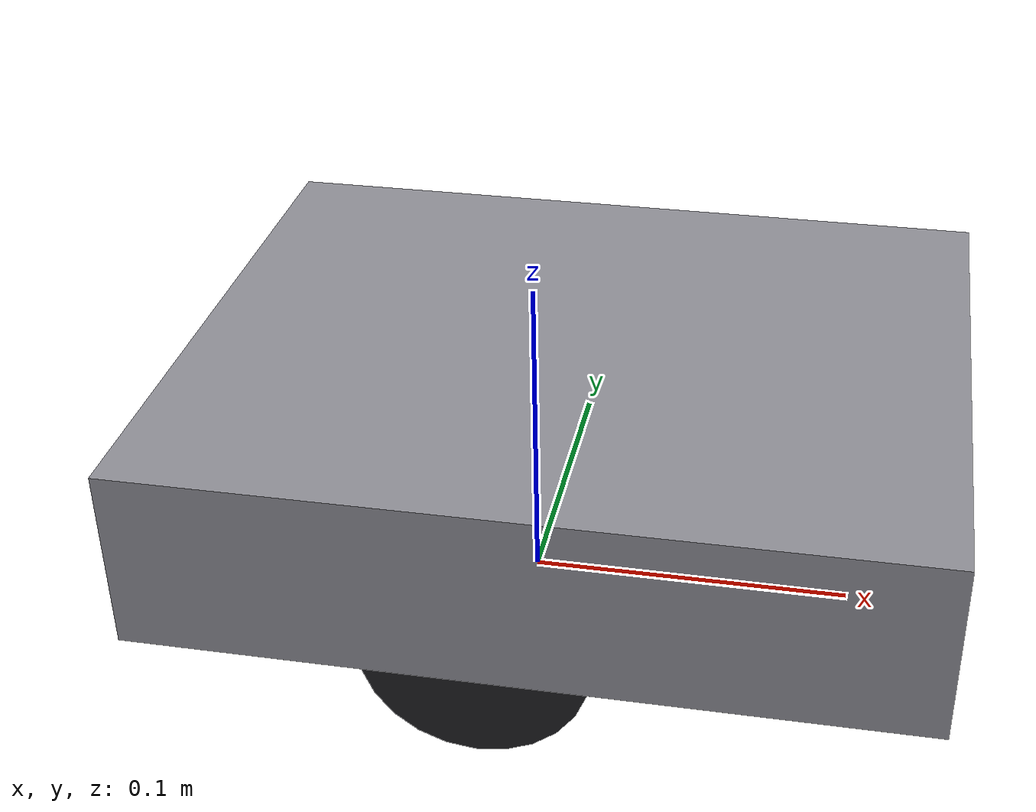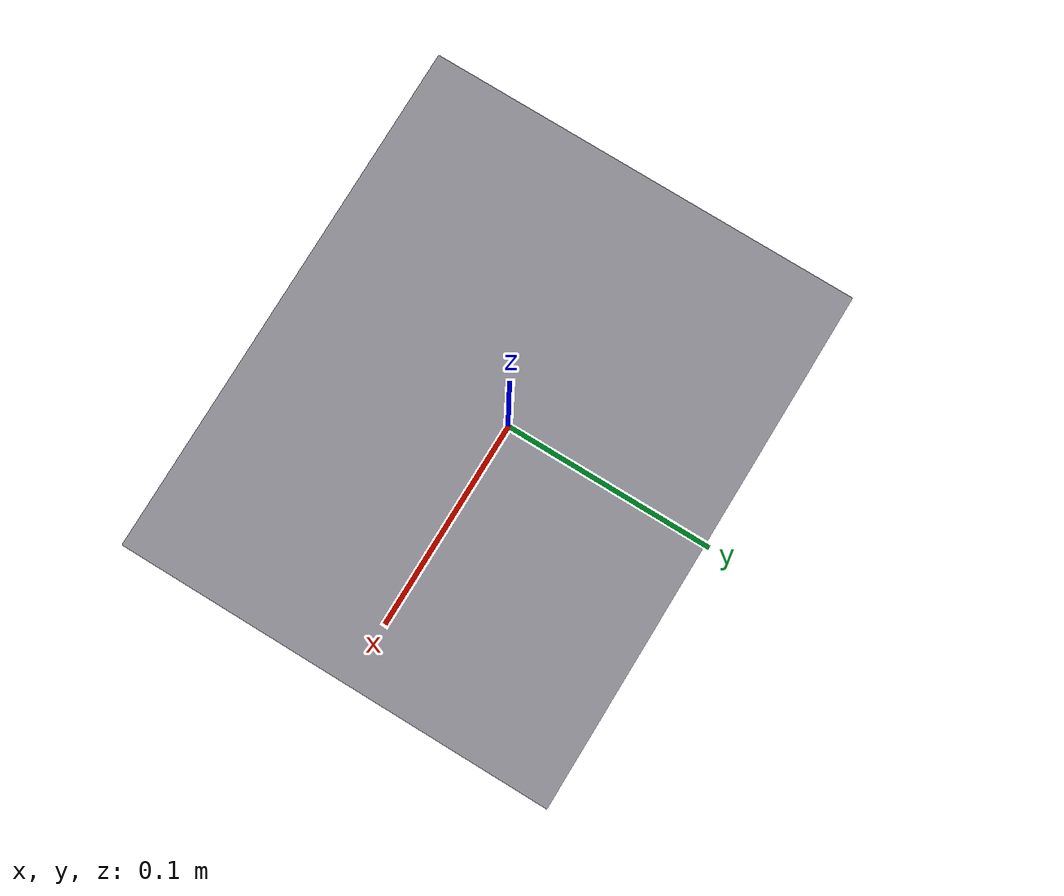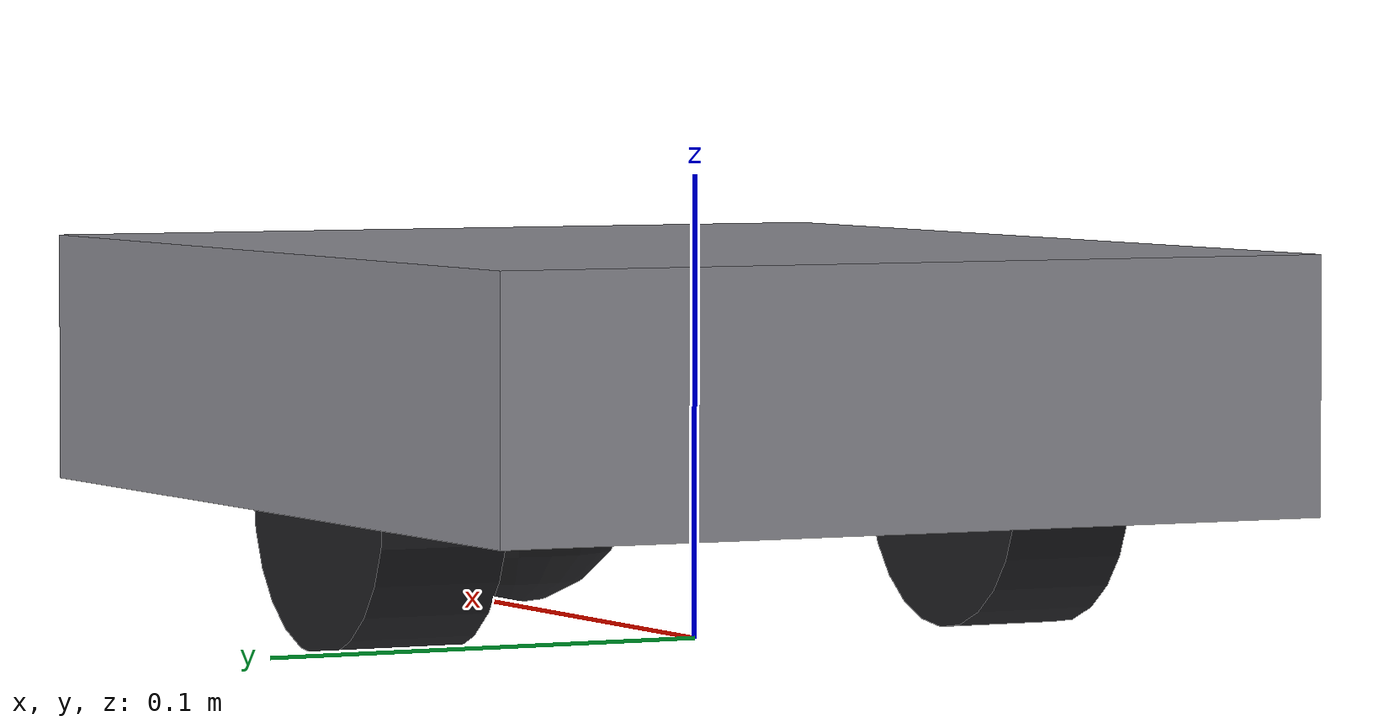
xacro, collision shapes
<?xml version="1.0"?>
<robot name="mdp_robot" xmlns:xacro="http://www.ros.org/wiki/xacro">

  <xacro:property name="wheel_radius" value="0.0332"/>
  <xacro:property name="wheel_width" value="0.0286"/>
  <xacro:property name="wheel_separation" value="0.15"/>
  <xacro:property name="caster_radius" value="0.0303"/>
  <xacro:property name="caster_x" value="0.095"/>
  <xacro:property name="caster_z" value="${-(wheel_radius - caster_radius)}"/>

  <!-- Real robot footprint (algorithm/arena.py: ROBOT_H_CM x ROBOT_W_CM), in metres -->
  <xacro:property name="chassis_length" value="0.23"/>
  <xacro:property name="chassis_width" value="0.19"/>
  <xacro:property name="chassis_height" value="0.055"/>
  <xacro:property name="chassis_x_offset" value="0.0142"/>
  <xacro:property name="chassis_z_offset" value="0.024"/>

  <material name="mdp_grey">
    <color rgba="0.55 0.55 0.58 1.0"/>
  </material>
  <material name="mdp_dark">
    <color rgba="0.12 0.12 0.13 1.0"/>
  </material>

  <link name="base_footprint"/>

  <!-- base_link origin = drive-wheel axle centre (matches the source mesh's own frame) -->
  <joint name="base_footprint_joint" type="fixed">
    <parent link="base_footprint"/>
    <child link="base_link"/>
    <origin xyz="0 0 ${wheel_radius}" rpy="0 0 0"/>
  </joint>

  <link name="base_link">
    <visual>
      <origin xyz="0 0 0" rpy="0 0 0"/>
      <geometry>
        <mesh filename="package://mdp_gazebo/meshes/base_link.STL"/>
      </geometry>
      <material name="mdp_grey"/>
    </visual>
    <collision>
      <origin xyz="${chassis_x_offset} 0 ${chassis_z_offset}" rpy="0 0 0"/>
      <geometry>
        <box size="${chassis_length} ${chassis_width} ${chassis_height}"/>
      </geometry>
    </collision>
    <inertial>
      <origin xyz="${chassis_x_offset} 0 ${chassis_z_offset}" rpy="0 0 0"/>
      <mass value="1.2"/>
      <inertia ixx="0.006" ixy="0" ixz="0" iyy="0.008" iyz="0" izz="0.010"/>
    </inertial>
  </link>

  <xacro:macro name="wheel" params="prefix reflect mesh_file">
    <link name="${prefix}_wheel_link">
      <visual>
        <origin xyz="0 0 0" rpy="0 0 0"/>
        <geometry>
          <mesh filename="package://mdp_gazebo/meshes/${mesh_file}"/>
        </geometry>
        <material name="mdp_dark"/>
      </visual>
      <collision>
        <origin xyz="0 0 0" rpy="1.5708 0 0"/>
        <geometry>
          <cylinder radius="${wheel_radius}" length="${wheel_width}"/>
        </geometry>
      </collision>
      <inertial>
        <mass value="0.05"/>
        <inertia ixx="2.0e-5" ixy="0" ixz="0" iyy="2.0e-5" iyz="0" izz="3.0e-5"/>
      </inertial>
    </link>
    <joint name="${prefix}_wheel_joint" type="continuous">
      <parent link="base_link"/>
      <child link="${prefix}_wheel_link"/>
      <origin xyz="0 ${reflect * wheel_separation / 2} 0" rpy="0 0 0"/>
      <axis xyz="0 1 0"/>
    </joint>
  </xacro:macro>

  <xacro:wheel prefix="left" reflect="1" mesh_file="left_link.STL"/>
  <xacro:wheel prefix="right" reflect="-1" mesh_file="right_link.STL"/>

  <!-- Passive caster: free-rolling contact point, not part of the diff-drive kinematics -->
  <link name="caster_link">
    <visual>
      <origin xyz="0 0 0" rpy="0 0 0"/>
      <geometry>
        <mesh filename="package://mdp_gazebo/meshes/front_link.STL"/>
      </geometry>
      <material name="mdp_dark"/>
    </visual>
    <collision>
      <origin xyz="0 0 0" rpy="0 0 0"/>
      <geometry>
        <sphere radius="${caster_radius}"/>
      </geometry>
    </collision>
    <inertial>
      <mass value="0.02"/>
      <inertia ixx="1.0e-6" ixy="0" ixz="0" iyy="1.0e-6" iyz="0" izz="1.0e-6"/>
    </inertial>
  </link>
  <joint name="caster_joint" type="fixed">
    <parent link="base_link"/>
    <child link="caster_link"/>
    <origin xyz="${caster_x} 0 ${caster_z}" rpy="0 0 0"/>
  </joint>

  <link name="ultrasonic_link"/>
  <joint name="ultrasonic_joint" type="fixed">
    <parent link="base_link"/>
    <child link="ultrasonic_link"/>
    <origin xyz="0.10 0.0 0.05" rpy="0 0 0"/>
  </joint>
  <link name="ir_left_link"/>
  <joint name="ir_left_joint" type="fixed">
    <parent link="base_link"/>
    <child link="ir_left_link"/>
    <origin xyz="0.08 0.06 0.04" rpy="0 0 0.52"/>
  </joint>
  <link name="ir_right_link"/>
  <joint name="ir_right_joint" type="fixed">
    <parent link="base_link"/>
    <child link="ir_right_link"/>
    <origin xyz="0.08 -0.06 0.04" rpy="0 0 -0.52"/>
  </joint>

  <gazebo>
    <plugin filename="gz-sim-diff-drive-system" name="gz::sim::systems::DiffDrive">
      <left_joint>left_wheel_joint</left_joint>
      <right_joint>right_wheel_joint</right_joint>
      <wheel_separation>${wheel_separation}</wheel_separation>
      <wheel_radius>${wheel_radius}</wheel_radius>
      <max_linear_acceleration>1.0</max_linear_acceleration>
      <min_linear_acceleration>-1.0</min_linear_acceleration>
      <max_angular_acceleration>4.0</max_angular_acceleration>
      <min_angular_acceleration>-4.0</min_angular_acceleration>
      <topic>cmd_vel</topic>
      <odom_topic>odom</odom_topic>
      <frame_id>odom</frame_id>
      <child_frame_id>base_footprint</child_frame_id>
      <odom_publish_frequency>20</odom_publish_frequency>
      <publish_odom>true</publish_odom>
      <publish_tf>false</publish_tf>
    </plugin>
    <plugin filename="gz-sim-joint-state-publisher-system" name="gz::sim::systems::JointStatePublisher"/>
  </gazebo>

</robot>
